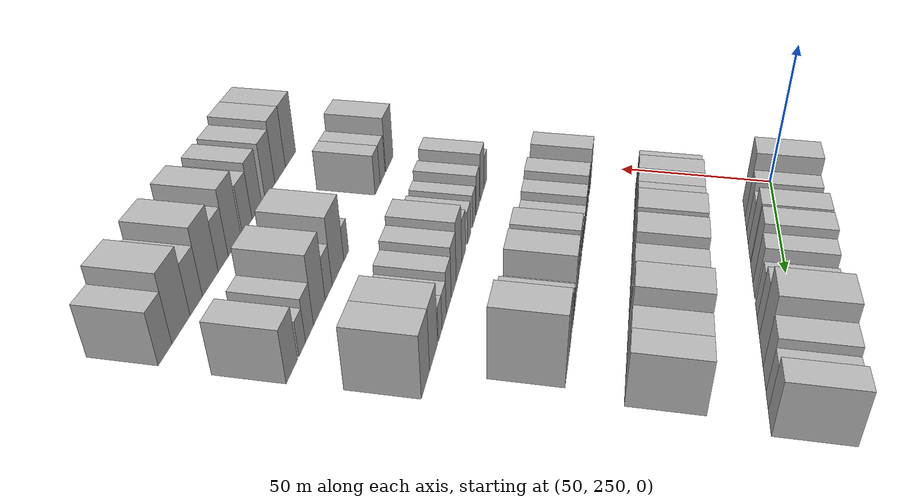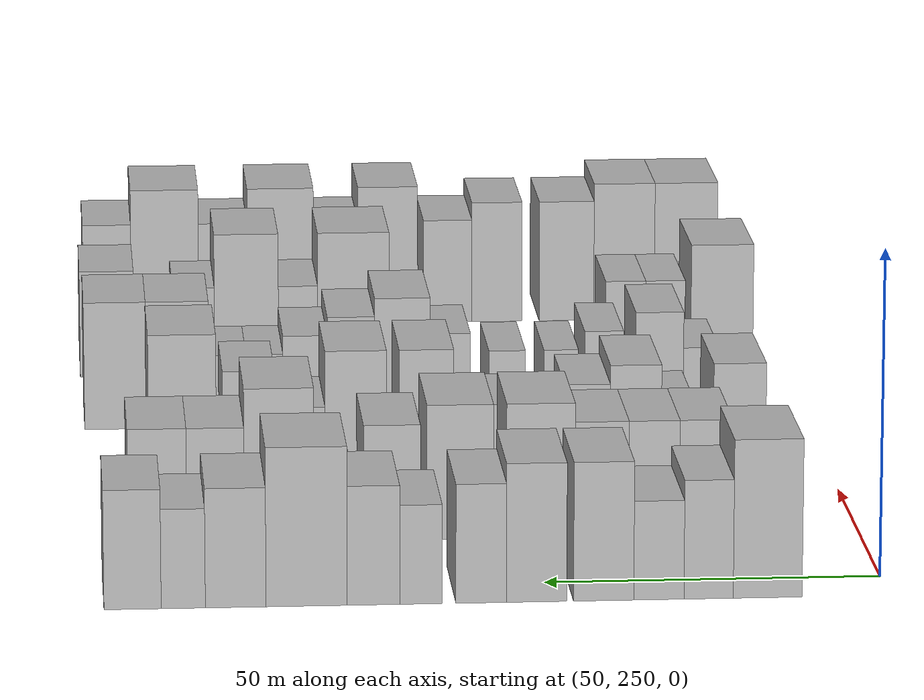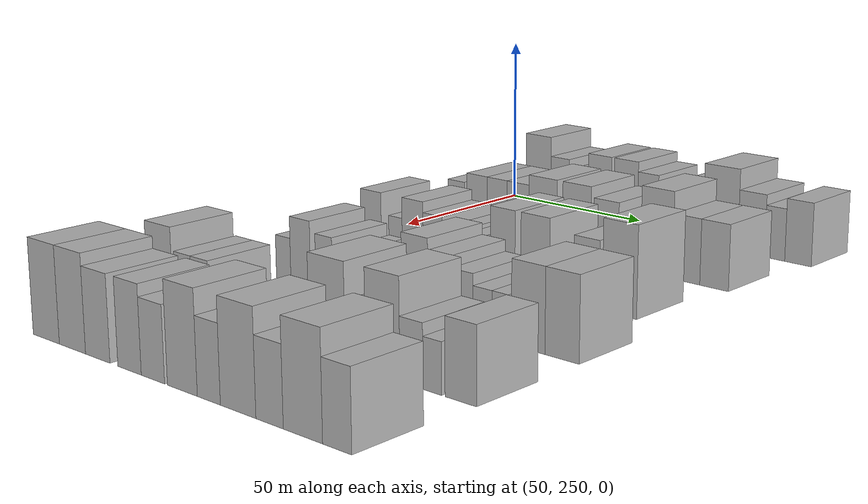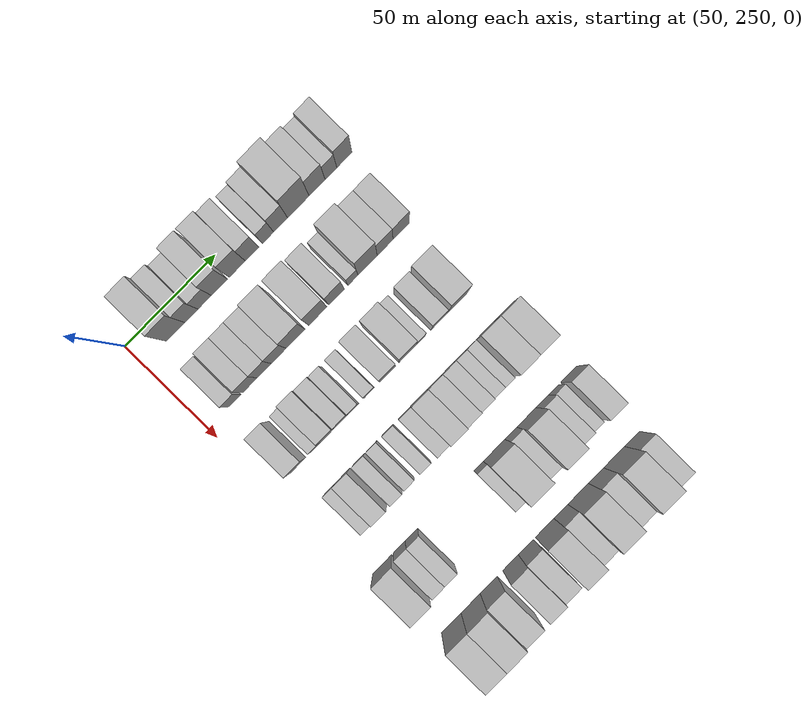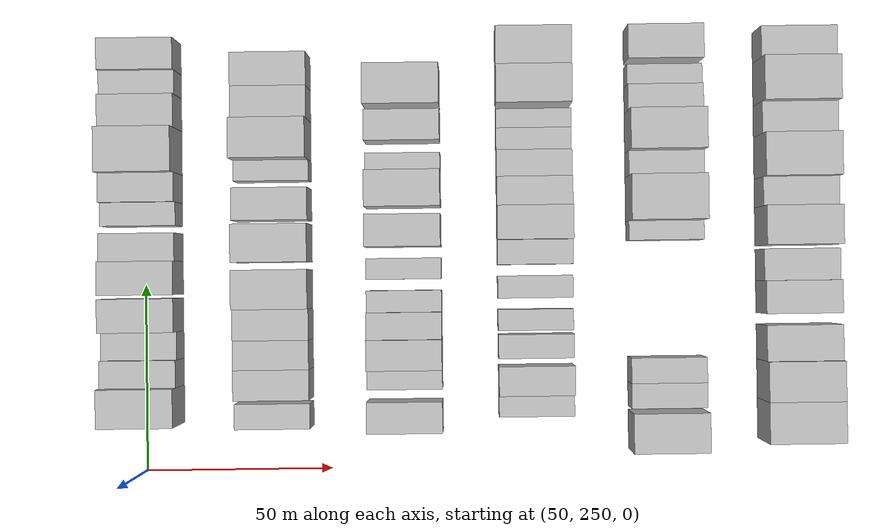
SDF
<sdf version="1.6">
 <world name="default">
  <model name="building_91">
   <static>1</static>
   <pose>50.0000 267.9501 0 0.000000 0.000000 0.000000</pose>
   <link name="link">
    <pose>0 0 12.00 0 0 0</pose>
    <collision name="collision"><geometry><box><size>20.0000 10.1535 24.0000</size></box></geometry></collision>
    <visual name="visual">
     <cast_shadows>0</cast_shadows>
     <geometry><box><size>20.0000 10.1535 24.0000</size></box></geometry>
     <material>
      <script>
       <uri>model://HANNAS_wall/materials/scripts</uri>
       <uri>model://HANNAS_wall/materials/textures</uri>
       <name>vrc/HANNAS_wall</name>
      </script>
     </material>
    </visual>
   </link>
  </model>
  <model name="building_92">
   <static>1</static>
   <pose>50.0000 276.6582 0 0.000000 0.000000 0.000000</pose>
   <link name="link">
    <pose>0 0 9.00 0 0 0</pose>
    <collision name="collision"><geometry><box><size>20.0000 7.2628 18.0000</size></box></geometry></collision>
    <visual name="visual">
     <cast_shadows>0</cast_shadows>
     <geometry><box><size>20.0000 7.2628 18.0000</size></box></geometry>
     <material>
      <script>
       <uri>model://HANNAS_wall/materials/scripts</uri>
       <uri>model://HANNAS_wall/materials/textures</uri>
       <name>vrc/HANNAS_wall</name>
      </script>
     </material>
    </visual>
   </link>
  </model>
  <model name="building_93">
   <static>1</static>
   <pose>50.0000 283.9842 0 0.000000 0.000000 0.000000</pose>
   <link name="link">
    <pose>0 0 7.50 0 0 0</pose>
    <collision name="collision"><geometry><box><size>20.0000 7.3891 15.0000</size></box></geometry></collision>
    <visual name="visual">
     <cast_shadows>0</cast_shadows>
     <geometry><box><size>20.0000 7.3891 15.0000</size></box></geometry>
     <material>
      <script>
       <uri>model://HANNAS_wall/materials/scripts</uri>
       <uri>model://HANNAS_wall/materials/textures</uri>
       <name>vrc/HANNAS_wall</name>
      </script>
     </material>
    </visual>
   </link>
  </model>
  <model name="building_94">
   <static>1</static>
   <pose>50.0000 292.1056 0 0.000000 0.000000 0.000000</pose>
   <link name="link">
    <pose>0 0 10.50 0 0 0</pose>
    <collision name="collision"><geometry><box><size>20.0000 8.8536 21.0000</size></box></geometry></collision>
    <visual name="visual">
     <cast_shadows>0</cast_shadows>
     <geometry><box><size>20.0000 8.8536 21.0000</size></box></geometry>
     <material>
      <script>
       <uri>model://HANNAS_wall/materials/scripts</uri>
       <uri>model://HANNAS_wall/materials/textures</uri>
       <name>vrc/HANNAS_wall</name>
      </script>
     </material>
    </visual>
   </link>
  </model>
  <model name="building_95">
   <static>1</static>
   <pose>50.0000 301.9605 0 0.000000 0.000000 0.000000</pose>
   <link name="link">
    <pose>0 0 10.50 0 0 0</pose>
    <collision name="collision"><geometry><box><size>20.0000 8.8564 21.0000</size></box></geometry></collision>
    <visual name="visual">
     <cast_shadows>0</cast_shadows>
     <geometry><box><size>20.0000 8.8564 21.0000</size></box></geometry>
     <material>
      <script>
       <uri>model://HANNAS_wall/materials/scripts</uri>
       <uri>model://HANNAS_wall/materials/textures</uri>
       <name>vrc/HANNAS_wall</name>
      </script>
     </material>
    </visual>
   </link>
  </model>
  <model name="building_96">
   <static>1</static>
   <pose>50.0000 310.0961 0 0.000000 0.000000 0.000000</pose>
   <link name="link">
    <pose>0 0 9.00 0 0 0</pose>
    <collision name="collision"><geometry><box><size>20.0000 7.4148 18.0000</size></box></geometry></collision>
    <visual name="visual">
     <cast_shadows>0</cast_shadows>
     <geometry><box><size>20.0000 7.4148 18.0000</size></box></geometry>
     <material>
      <script>
       <uri>model://HANNAS_wall/materials/scripts</uri>
       <uri>model://HANNAS_wall/materials/textures</uri>
       <name>vrc/HANNAS_wall</name>
      </script>
     </material>
    </visual>
   </link>
  </model>
  <model name="building_97">
   <static>1</static>
   <pose>50.0000 318.9092 0 0.000000 0.000000 0.000000</pose>
   <link name="link">
    <pose>0 0 7.50 0 0 0</pose>
    <collision name="collision"><geometry><box><size>20.0000 6.2114 15.0000</size></box></geometry></collision>
    <visual name="visual">
     <cast_shadows>0</cast_shadows>
     <geometry><box><size>20.0000 6.2114 15.0000</size></box></geometry>
     <material>
      <script>
       <uri>model://HANNAS_wall/materials/scripts</uri>
       <uri>model://HANNAS_wall/materials/textures</uri>
       <name>vrc/HANNAS_wall</name>
      </script>
     </material>
    </visual>
   </link>
  </model>
  <model name="building_98">
   <static>1</static>
   <pose>50.0000 325.8660 0 0.000000 0.000000 0.000000</pose>
   <link name="link">
    <pose>0 0 9.00 0 0 0</pose>
    <collision name="collision"><geometry><box><size>20.0000 7.7023 18.0000</size></box></geometry></collision>
    <visual name="visual">
     <cast_shadows>0</cast_shadows>
     <geometry><box><size>20.0000 7.7023 18.0000</size></box></geometry>
     <material>
      <script>
       <uri>model://HANNAS_wall/materials/scripts</uri>
       <uri>model://HANNAS_wall/materials/textures</uri>
       <name>vrc/HANNAS_wall</name>
      </script>
     </material>
    </visual>
   </link>
  </model>
  <model name="building_99">
   <static>1</static>
   <pose>50.0000 335.6517 0 0.000000 0.000000 0.000000</pose>
   <link name="link">
    <pose>0 0 12.00 0 0 0</pose>
    <collision name="collision"><geometry><box><size>20.0000 11.8690 24.0000</size></box></geometry></collision>
    <visual name="visual">
     <cast_shadows>0</cast_shadows>
     <geometry><box><size>20.0000 11.8690 24.0000</size></box></geometry>
     <material>
      <script>
       <uri>model://HANNAS_wall/materials/scripts</uri>
       <uri>model://HANNAS_wall/materials/textures</uri>
       <name>vrc/HANNAS_wall</name>
      </script>
     </material>
    </visual>
   </link>
  </model>
  <model name="building_100">
   <static>1</static>
   <pose>50.0000 346.0179 0 0.000000 0.000000 0.000000</pose>
   <link name="link">
    <pose>0 0 9.00 0 0 0</pose>
    <collision name="collision"><geometry><box><size>20.0000 8.8634 18.0000</size></box></geometry></collision>
    <visual name="visual">
     <cast_shadows>0</cast_shadows>
     <geometry><box><size>20.0000 8.8634 18.0000</size></box></geometry>
     <material>
      <script>
       <uri>model://HANNAS_wall/materials/scripts</uri>
       <uri>model://HANNAS_wall/materials/textures</uri>
       <name>vrc/HANNAS_wall</name>
      </script>
     </material>
    </visual>
   </link>
  </model>
  <model name="building_101">
   <static>1</static>
   <pose>50.0000 353.6710 0 0.000000 0.000000 0.000000</pose>
   <link name="link">
    <pose>0 0 7.50 0 0 0</pose>
    <collision name="collision"><geometry><box><size>20.0000 6.4428 15.0000</size></box></geometry></collision>
    <visual name="visual">
     <cast_shadows>0</cast_shadows>
     <geometry><box><size>20.0000 6.4428 15.0000</size></box></geometry>
     <material>
      <script>
       <uri>model://HANNAS_wall/materials/scripts</uri>
       <uri>model://HANNAS_wall/materials/textures</uri>
       <name>vrc/HANNAS_wall</name>
      </script>
     </material>
    </visual>
   </link>
  </model>
  <model name="building_102">
   <static>1</static>
   <pose>50.0000 361.0590 0 0.000000 0.000000 0.000000</pose>
   <link name="link">
    <pose>0 0 9.00 0 0 0</pose>
    <collision name="collision"><geometry><box><size>20.0000 8.3332 18.0000</size></box></geometry></collision>
    <visual name="visual">
     <cast_shadows>0</cast_shadows>
     <geometry><box><size>20.0000 8.3332 18.0000</size></box></geometry>
     <material>
      <script>
       <uri>model://HANNAS_wall/materials/scripts</uri>
       <uri>model://HANNAS_wall/materials/textures</uri>
       <name>vrc/HANNAS_wall</name>
      </script>
     </material>
    </visual>
   </link>
  </model>
  <model name="building_213">
   <static>1</static>
   <pose>85.0000 265.0071 0 0.000000 0.000000 0.000000</pose>
   <link name="link">
    <pose>0 0 7.50 0 0 0</pose>
    <collision name="collision"><geometry><box><size>20.0000 6.6869 15.0000</size></box></geometry></collision>
    <visual name="visual">
     <cast_shadows>0</cast_shadows>
     <geometry><box><size>20.0000 6.6869 15.0000</size></box></geometry>
     <material>
      <script>
       <uri>model://HANNAS_wall/materials/scripts</uri>
       <uri>model://HANNAS_wall/materials/textures</uri>
       <name>vrc/HANNAS_wall</name>
      </script>
     </material>
    </visual>
   </link>
  </model>
  <model name="building_214">
   <static>1</static>
   <pose>85.0000 273.3747 0 0.000000 0.000000 0.000000</pose>
   <link name="link">
    <pose>0 0 9.00 0 0 0</pose>
    <collision name="collision"><geometry><box><size>20.0000 8.0482 18.0000</size></box></geometry></collision>
    <visual name="visual">
     <cast_shadows>0</cast_shadows>
     <geometry><box><size>20.0000 8.0482 18.0000</size></box></geometry>
     <material>
      <script>
       <uri>model://HANNAS_wall/materials/scripts</uri>
       <uri>model://HANNAS_wall/materials/textures</uri>
       <name>vrc/HANNAS_wall</name>
      </script>
     </material>
    </visual>
   </link>
  </model>
  <model name="building_215">
   <static>1</static>
   <pose>85.0000 281.2694 0 0.000000 0.000000 0.000000</pose>
   <link name="link">
    <pose>0 0 9.00 0 0 0</pose>
    <collision name="collision"><geometry><box><size>20.0000 7.7413 18.0000</size></box></geometry></collision>
    <visual name="visual">
     <cast_shadows>0</cast_shadows>
     <geometry><box><size>20.0000 7.7413 18.0000</size></box></geometry>
     <material>
      <script>
       <uri>model://HANNAS_wall/materials/scripts</uri>
       <uri>model://HANNAS_wall/materials/textures</uri>
       <name>vrc/HANNAS_wall</name>
      </script>
     </material>
    </visual>
   </link>
  </model>
  <model name="building_216">
   <static>1</static>
   <pose>85.0000 289.2467 0 0.000000 0.000000 0.000000</pose>
   <link name="link">
    <pose>0 0 9.00 0 0 0</pose>
    <collision name="collision"><geometry><box><size>20.0000 8.2133 18.0000</size></box></geometry></collision>
    <visual name="visual">
     <cast_shadows>0</cast_shadows>
     <geometry><box><size>20.0000 8.2133 18.0000</size></box></geometry>
     <material>
      <script>
       <uri>model://HANNAS_wall/materials/scripts</uri>
       <uri>model://HANNAS_wall/materials/textures</uri>
       <name>vrc/HANNAS_wall</name>
      </script>
     </material>
    </visual>
   </link>
  </model>
  <model name="building_217">
   <static>1</static>
   <pose>85.0000 298.5450 0 0.000000 0.000000 0.000000</pose>
   <link name="link">
    <pose>0 0 10.50 0 0 0</pose>
    <collision name="collision"><geometry><box><size>20.0000 10.3832 21.0000</size></box></geometry></collision>
    <visual name="visual">
     <cast_shadows>0</cast_shadows>
     <geometry><box><size>20.0000 10.3832 21.0000</size></box></geometry>
     <material>
      <script>
       <uri>model://HANNAS_wall/materials/scripts</uri>
       <uri>model://HANNAS_wall/materials/textures</uri>
       <name>vrc/HANNAS_wall</name>
      </script>
     </material>
    </visual>
   </link>
  </model>
  <model name="building_218">
   <static>1</static>
   <pose>85.0000 310.7754 0 0.000000 0.000000 0.000000</pose>
   <link name="link">
    <pose>0 0 10.50 0 0 0</pose>
    <collision name="collision"><geometry><box><size>20.0000 10.0776 21.0000</size></box></geometry></collision>
    <visual name="visual">
     <cast_shadows>0</cast_shadows>
     <geometry><box><size>20.0000 10.0776 21.0000</size></box></geometry>
     <material>
      <script>
       <uri>model://HANNAS_wall/materials/scripts</uri>
       <uri>model://HANNAS_wall/materials/textures</uri>
       <name>vrc/HANNAS_wall</name>
      </script>
     </material>
    </visual>
   </link>
  </model>
  <model name="building_219">
   <static>1</static>
   <pose>85.0000 321.1157 0 0.000000 0.000000 0.000000</pose>
   <link name="link">
    <pose>0 0 9.00 0 0 0</pose>
    <collision name="collision"><geometry><box><size>20.0000 8.6030 18.0000</size></box></geometry></collision>
    <visual name="visual">
     <cast_shadows>0</cast_shadows>
     <geometry><box><size>20.0000 8.6030 18.0000</size></box></geometry>
     <material>
      <script>
       <uri>model://HANNAS_wall/materials/scripts</uri>
       <uri>model://HANNAS_wall/materials/textures</uri>
       <name>vrc/HANNAS_wall</name>
      </script>
     </material>
    </visual>
   </link>
  </model>
  <model name="building_220">
   <static>1</static>
   <pose>85.0000 330.1701 0 0.000000 0.000000 0.000000</pose>
   <link name="link">
    <pose>0 0 6.00 0 0 0</pose>
    <collision name="collision"><geometry><box><size>20.0000 5.5057 12.0000</size></box></geometry></collision>
    <visual name="visual">
     <cast_shadows>0</cast_shadows>
     <geometry><box><size>20.0000 5.5057 12.0000</size></box></geometry>
     <material>
      <script>
       <uri>model://HANNAS_wall/materials/scripts</uri>
       <uri>model://HANNAS_wall/materials/textures</uri>
       <name>vrc/HANNAS_wall</name>
      </script>
     </material>
    </visual>
   </link>
  </model>
  <model name="building_221">
   <static>1</static>
   <pose>85.0000 338.2046 0 0.000000 0.000000 0.000000</pose>
   <link name="link">
    <pose>0 0 12.00 0 0 0</pose>
    <collision name="collision"><geometry><box><size>20.0000 10.5634 24.0000</size></box></geometry></collision>
    <visual name="visual">
     <cast_shadows>0</cast_shadows>
     <geometry><box><size>20.0000 10.5634 24.0000</size></box></geometry>
     <material>
      <script>
       <uri>model://HANNAS_wall/materials/scripts</uri>
       <uri>model://HANNAS_wall/materials/textures</uri>
       <name>vrc/HANNAS_wall</name>
      </script>
     </material>
    </visual>
   </link>
  </model>
  <model name="building_222">
   <static>1</static>
   <pose>85.0000 347.8347 0 0.000000 0.000000 0.000000</pose>
   <link name="link">
    <pose>0 0 9.00 0 0 0</pose>
    <collision name="collision"><geometry><box><size>20.0000 8.6967 18.0000</size></box></geometry></collision>
    <visual name="visual">
     <cast_shadows>0</cast_shadows>
     <geometry><box><size>20.0000 8.6967 18.0000</size></box></geometry>
     <material>
      <script>
       <uri>model://HANNAS_wall/materials/scripts</uri>
       <uri>model://HANNAS_wall/materials/textures</uri>
       <name>vrc/HANNAS_wall</name>
      </script>
     </material>
    </visual>
   </link>
  </model>
  <model name="building_223">
   <static>1</static>
   <pose>85.0000 356.6292 0 0.000000 0.000000 0.000000</pose>
   <link name="link">
    <pose>0 0 9.00 0 0 0</pose>
    <collision name="collision"><geometry><box><size>20.0000 8.8923 18.0000</size></box></geometry></collision>
    <visual name="visual">
     <cast_shadows>0</cast_shadows>
     <geometry><box><size>20.0000 8.8923 18.0000</size></box></geometry>
     <material>
      <script>
       <uri>model://HANNAS_wall/materials/scripts</uri>
       <uri>model://HANNAS_wall/materials/textures</uri>
       <name>vrc/HANNAS_wall</name>
      </script>
     </material>
    </visual>
   </link>
  </model>
  <model name="building_341">
   <static>1</static>
   <pose>120.0000 264.4002 0 0.000000 0.000000 0.000000</pose>
   <link name="link">
    <pose>0 0 9.00 0 0 0</pose>
    <collision name="collision"><geometry><box><size>20.0000 8.2802 18.0000</size></box></geometry></collision>
    <visual name="visual">
     <cast_shadows>0</cast_shadows>
     <geometry><box><size>20.0000 8.2802 18.0000</size></box></geometry>
     <material>
      <script>
       <uri>model://HANNAS_wall/materials/scripts</uri>
       <uri>model://HANNAS_wall/materials/textures</uri>
       <name>vrc/HANNAS_wall</name>
      </script>
     </material>
    </visual>
   </link>
  </model>
  <model name="building_342">
   <static>1</static>
   <pose>120.0000 274.1498 0 0.000000 0.000000 0.000000</pose>
   <link name="link">
    <pose>0 0 6.00 0 0 0</pose>
    <collision name="collision"><geometry><box><size>20.0000 5.2189 12.0000</size></box></geometry></collision>
    <visual name="visual">
     <cast_shadows>0</cast_shadows>
     <geometry><box><size>20.0000 5.2189 12.0000</size></box></geometry>
     <material>
      <script>
       <uri>model://HANNAS_wall/materials/scripts</uri>
       <uri>model://HANNAS_wall/materials/textures</uri>
       <name>vrc/HANNAS_wall</name>
      </script>
     </material>
    </visual>
   </link>
  </model>
  <model name="building_343">
   <static>1</static>
   <pose>120.0000 280.7893 0 0.000000 0.000000 0.000000</pose>
   <link name="link">
    <pose>0 0 9.00 0 0 0</pose>
    <collision name="collision"><geometry><box><size>20.0000 8.0600 18.0000</size></box></geometry></collision>
    <visual name="visual">
     <cast_shadows>0</cast_shadows>
     <geometry><box><size>20.0000 8.0600 18.0000</size></box></geometry>
     <material>
      <script>
       <uri>model://HANNAS_wall/materials/scripts</uri>
       <uri>model://HANNAS_wall/materials/textures</uri>
       <name>vrc/HANNAS_wall</name>
      </script>
     </material>
    </visual>
   </link>
  </model>
  <model name="building_344">
   <static>1</static>
   <pose>120.0000 288.4284 0 0.000000 0.000000 0.000000</pose>
   <link name="link">
    <pose>0 0 7.50 0 0 0</pose>
    <collision name="collision"><geometry><box><size>20.0000 7.2183 15.0000</size></box></geometry></collision>
    <visual name="visual">
     <cast_shadows>0</cast_shadows>
     <geometry><box><size>20.0000 7.2183 15.0000</size></box></geometry>
     <material>
      <script>
       <uri>model://HANNAS_wall/materials/scripts</uri>
       <uri>model://HANNAS_wall/materials/textures</uri>
       <name>vrc/HANNAS_wall</name>
      </script>
     </material>
    </visual>
   </link>
  </model>
  <model name="building_345">
   <static>1</static>
   <pose>120.0000 294.9338 0 0.000000 0.000000 0.000000</pose>
   <link name="link">
    <pose>0 0 6.00 0 0 0</pose>
    <collision name="collision"><geometry><box><size>20.0000 5.7926 12.0000</size></box></geometry></collision>
    <visual name="visual">
     <cast_shadows>0</cast_shadows>
     <geometry><box><size>20.0000 5.7926 12.0000</size></box></geometry>
     <material>
      <script>
       <uri>model://HANNAS_wall/materials/scripts</uri>
       <uri>model://HANNAS_wall/materials/textures</uri>
       <name>vrc/HANNAS_wall</name>
      </script>
     </material>
    </visual>
   </link>
  </model>
  <model name="building_346">
   <static>1</static>
   <pose>120.0000 303.6219 0 0.000000 0.000000 0.000000</pose>
   <link name="link">
    <pose>0 0 6.00 0 0 0</pose>
    <collision name="collision"><geometry><box><size>20.0000 5.5836 12.0000</size></box></geometry></collision>
    <visual name="visual">
     <cast_shadows>0</cast_shadows>
     <geometry><box><size>20.0000 5.5836 12.0000</size></box></geometry>
     <material>
      <script>
       <uri>model://HANNAS_wall/materials/scripts</uri>
       <uri>model://HANNAS_wall/materials/textures</uri>
       <name>vrc/HANNAS_wall</name>
      </script>
     </material>
    </visual>
   </link>
  </model>
  <model name="building_347">
   <static>1</static>
   <pose>120.0000 313.6865 0 0.000000 0.000000 0.000000</pose>
   <link name="link">
    <pose>0 0 10.50 0 0 0</pose>
    <collision name="collision"><geometry><box><size>20.0000 8.5456 21.0000</size></box></geometry></collision>
    <visual name="visual">
     <cast_shadows>0</cast_shadows>
     <geometry><box><size>20.0000 8.5456 21.0000</size></box></geometry>
     <material>
      <script>
       <uri>model://HANNAS_wall/materials/scripts</uri>
       <uri>model://HANNAS_wall/materials/textures</uri>
       <name>vrc/HANNAS_wall</name>
      </script>
     </material>
    </visual>
   </link>
  </model>
  <model name="building_348">
   <static>1</static>
   <pose>120.0000 324.7716 0 0.000000 0.000000 0.000000</pose>
   <link name="link">
    <pose>0 0 10.50 0 0 0</pose>
    <collision name="collision"><geometry><box><size>20.0000 9.6245 21.0000</size></box></geometry></collision>
    <visual name="visual">
     <cast_shadows>0</cast_shadows>
     <geometry><box><size>20.0000 9.6245 21.0000</size></box></geometry>
     <material>
      <script>
       <uri>model://HANNAS_wall/materials/scripts</uri>
       <uri>model://HANNAS_wall/materials/textures</uri>
       <name>vrc/HANNAS_wall</name>
      </script>
     </material>
    </visual>
   </link>
  </model>
  <model name="building_349">
   <static>1</static>
   <pose>120.0000 332.0092 0 0.000000 0.000000 0.000000</pose>
   <link name="link">
    <pose>0 0 6.00 0 0 0</pose>
    <collision name="collision"><geometry><box><size>20.0000 4.8507 12.0000</size></box></geometry></collision>
    <visual name="visual">
     <cast_shadows>0</cast_shadows>
     <geometry><box><size>20.0000 4.8507 12.0000</size></box></geometry>
     <material>
      <script>
       <uri>model://HANNAS_wall/materials/scripts</uri>
       <uri>model://HANNAS_wall/materials/textures</uri>
       <name>vrc/HANNAS_wall</name>
      </script>
     </material>
    </visual>
   </link>
  </model>
  <model name="building_350">
   <static>1</static>
   <pose>120.0000 341.5160 0 0.000000 0.000000 0.000000</pose>
   <link name="link">
    <pose>0 0 9.00 0 0 0</pose>
    <collision name="collision"><geometry><box><size>20.0000 8.1628 18.0000</size></box></geometry></collision>
    <visual name="visual">
     <cast_shadows>0</cast_shadows>
     <geometry><box><size>20.0000 8.1628 18.0000</size></box></geometry>
     <material>
      <script>
       <uri>model://HANNAS_wall/materials/scripts</uri>
       <uri>model://HANNAS_wall/materials/textures</uri>
       <name>vrc/HANNAS_wall</name>
      </script>
     </material>
    </visual>
   </link>
  </model>
  <model name="building_351">
   <static>1</static>
   <pose>120.0000 351.8863 0 0.000000 0.000000 0.000000</pose>
   <link name="link">
    <pose>0 0 12.00 0 0 0</pose>
    <collision name="collision"><geometry><box><size>20.0000 10.5779 24.0000</size></box></geometry></collision>
    <visual name="visual">
     <cast_shadows>0</cast_shadows>
     <geometry><box><size>20.0000 10.5779 24.0000</size></box></geometry>
     <material>
      <script>
       <uri>model://HANNAS_wall/materials/scripts</uri>
       <uri>model://HANNAS_wall/materials/textures</uri>
       <name>vrc/HANNAS_wall</name>
      </script>
     </material>
    </visual>
   </link>
  </model>
  <model name="building_461">
   <static>1</static>
   <pose>155.0000 266.8245 0 0.000000 0.000000 0.000000</pose>
   <link name="link">
    <pose>0 0 6.00 0 0 0</pose>
    <collision name="collision"><geometry><box><size>20.0000 5.7848 12.0000</size></box></geometry></collision>
    <visual name="visual">
     <cast_shadows>0</cast_shadows>
     <geometry><box><size>20.0000 5.7848 12.0000</size></box></geometry>
     <material>
      <script>
       <uri>model://HANNAS_wall/materials/scripts</uri>
       <uri>model://HANNAS_wall/materials/textures</uri>
       <name>vrc/HANNAS_wall</name>
      </script>
     </material>
    </visual>
   </link>
  </model>
  <model name="building_462">
   <static>1</static>
   <pose>155.0000 273.6049 0 0.000000 0.000000 0.000000</pose>
   <link name="link">
    <pose>0 0 9.00 0 0 0</pose>
    <collision name="collision"><geometry><box><size>20.0000 7.7759 18.0000</size></box></geometry></collision>
    <visual name="visual">
     <cast_shadows>0</cast_shadows>
     <geometry><box><size>20.0000 7.7759 18.0000</size></box></geometry>
     <material>
      <script>
       <uri>model://HANNAS_wall/materials/scripts</uri>
       <uri>model://HANNAS_wall/materials/textures</uri>
       <name>vrc/HANNAS_wall</name>
      </script>
     </material>
    </visual>
   </link>
  </model>
  <model name="building_463">
   <static>1</static>
   <pose>155.0000 282.6535 0 0.000000 0.000000 0.000000</pose>
   <link name="link">
    <pose>0 0 7.50 0 0 0</pose>
    <collision name="collision"><geometry><box><size>20.0000 6.3214 15.0000</size></box></geometry></collision>
    <visual name="visual">
     <cast_shadows>0</cast_shadows>
     <geometry><box><size>20.0000 6.3214 15.0000</size></box></geometry>
     <material>
      <script>
       <uri>model://HANNAS_wall/materials/scripts</uri>
       <uri>model://HANNAS_wall/materials/textures</uri>
       <name>vrc/HANNAS_wall</name>
      </script>
     </material>
    </visual>
   </link>
  </model>
  <model name="building_464">
   <static>1</static>
   <pose>155.0000 289.6211 0 0.000000 0.000000 0.000000</pose>
   <link name="link">
    <pose>0 0 6.00 0 0 0</pose>
    <collision name="collision"><geometry><box><size>20.0000 5.6137 12.0000</size></box></geometry></collision>
    <visual name="visual">
     <cast_shadows>0</cast_shadows>
     <geometry><box><size>20.0000 5.6137 12.0000</size></box></geometry>
     <material>
      <script>
       <uri>model://HANNAS_wall/materials/scripts</uri>
       <uri>model://HANNAS_wall/materials/textures</uri>
       <name>vrc/HANNAS_wall</name>
      </script>
     </material>
    </visual>
   </link>
  </model>
  <model name="building_465">
   <static>1</static>
   <pose>155.0000 298.3934 0 0.000000 0.000000 0.000000</pose>
   <link name="link">
    <pose>0 0 6.00 0 0 0</pose>
    <collision name="collision"><geometry><box><size>20.0000 5.9309 12.0000</size></box></geometry></collision>
    <visual name="visual">
     <cast_shadows>0</cast_shadows>
     <geometry><box><size>20.0000 5.9309 12.0000</size></box></geometry>
     <material>
      <script>
       <uri>model://HANNAS_wall/materials/scripts</uri>
       <uri>model://HANNAS_wall/materials/textures</uri>
       <name>vrc/HANNAS_wall</name>
      </script>
     </material>
    </visual>
   </link>
  </model>
  <model name="building_466">
   <static>1</static>
   <pose>155.0000 307.6278 0 0.000000 0.000000 0.000000</pose>
   <link name="link">
    <pose>0 0 7.50 0 0 0</pose>
    <collision name="collision"><geometry><box><size>20.0000 6.5379 15.0000</size></box></geometry></collision>
    <visual name="visual">
     <cast_shadows>0</cast_shadows>
     <geometry><box><size>20.0000 6.5379 15.0000</size></box></geometry>
     <material>
      <script>
       <uri>model://HANNAS_wall/materials/scripts</uri>
       <uri>model://HANNAS_wall/materials/textures</uri>
       <name>vrc/HANNAS_wall</name>
      </script>
     </material>
    </visual>
   </link>
  </model>
  <model name="building_467">
   <static>1</static>
   <pose>155.0000 315.3817 0 0.000000 0.000000 0.000000</pose>
   <link name="link">
    <pose>0 0 10.50 0 0 0</pose>
    <collision name="collision"><geometry><box><size>20.0000 8.9701 21.0000</size></box></geometry></collision>
    <visual name="visual">
     <cast_shadows>0</cast_shadows>
     <geometry><box><size>20.0000 8.9701 21.0000</size></box></geometry>
     <material>
      <script>
       <uri>model://HANNAS_wall/materials/scripts</uri>
       <uri>model://HANNAS_wall/materials/textures</uri>
       <name>vrc/HANNAS_wall</name>
      </script>
     </material>
    </visual>
   </link>
  </model>
  <model name="building_468">
   <static>1</static>
   <pose>155.0000 323.6958 0 0.000000 0.000000 0.000000</pose>
   <link name="link">
    <pose>0 0 9.00 0 0 0</pose>
    <collision name="collision"><geometry><box><size>20.0000 7.6580 18.0000</size></box></geometry></collision>
    <visual name="visual">
     <cast_shadows>0</cast_shadows>
     <geometry><box><size>20.0000 7.6580 18.0000</size></box></geometry>
     <material>
      <script>
       <uri>model://HANNAS_wall/materials/scripts</uri>
       <uri>model://HANNAS_wall/materials/textures</uri>
       <name>vrc/HANNAS_wall</name>
      </script>
     </material>
    </visual>
   </link>
  </model>
  <model name="building_469">
   <static>1</static>
   <pose>155.0000 331.1213 0 0.000000 0.000000 0.000000</pose>
   <link name="link">
    <pose>0 0 7.50 0 0 0</pose>
    <collision name="collision"><geometry><box><size>20.0000 7.1929 15.0000</size></box></geometry></collision>
    <visual name="visual">
     <cast_shadows>0</cast_shadows>
     <geometry><box><size>20.0000 7.1929 15.0000</size></box></geometry>
     <material>
      <script>
       <uri>model://HANNAS_wall/materials/scripts</uri>
       <uri>model://HANNAS_wall/materials/textures</uri>
       <name>vrc/HANNAS_wall</name>
      </script>
     </material>
    </visual>
   </link>
  </model>
  <model name="building_470">
   <static>1</static>
   <pose>155.0000 337.6980 0 0.000000 0.000000 0.000000</pose>
   <link name="link">
    <pose>0 0 6.00 0 0 0</pose>
    <collision name="collision"><geometry><box><size>20.0000 5.9605 12.0000</size></box></geometry></collision>
    <visual name="visual">
     <cast_shadows>0</cast_shadows>
     <geometry><box><size>20.0000 5.9605 12.0000</size></box></geometry>
     <material>
      <script>
       <uri>model://HANNAS_wall/materials/scripts</uri>
       <uri>model://HANNAS_wall/materials/textures</uri>
       <name>vrc/HANNAS_wall</name>
      </script>
     </material>
    </visual>
   </link>
  </model>
  <model name="building_471">
   <static>1</static>
   <pose>155.0000 343.2026 0 0.000000 0.000000 0.000000</pose>
   <link name="link">
    <pose>0 0 6.00 0 0 0</pose>
    <collision name="collision"><geometry><box><size>20.0000 5.0488 12.0000</size></box></geometry></collision>
    <visual name="visual">
     <cast_shadows>0</cast_shadows>
     <geometry><box><size>20.0000 5.0488 12.0000</size></box></geometry>
     <material>
      <script>
       <uri>model://HANNAS_wall/materials/scripts</uri>
       <uri>model://HANNAS_wall/materials/textures</uri>
       <name>vrc/HANNAS_wall</name>
      </script>
     </material>
    </visual>
   </link>
  </model>
  <model name="building_472">
   <static>1</static>
   <pose>155.0000 351.7864 0 0.000000 0.000000 0.000000</pose>
   <link name="link">
    <pose>0 0 10.50 0 0 0</pose>
    <collision name="collision"><geometry><box><size>20.0000 10.1187 21.0000</size></box></geometry></collision>
    <visual name="visual">
     <cast_shadows>0</cast_shadows>
     <geometry><box><size>20.0000 10.1187 21.0000</size></box></geometry>
     <material>
      <script>
       <uri>model://HANNAS_wall/materials/scripts</uri>
       <uri>model://HANNAS_wall/materials/textures</uri>
       <name>vrc/HANNAS_wall</name>
      </script>
     </material>
    </visual>
   </link>
  </model>
  <model name="building_473">
   <static>1</static>
   <pose>155.0000 361.8297 0 0.000000 0.000000 0.000000</pose>
   <link name="link">
    <pose>0 0 10.50 0 0 0</pose>
    <collision name="collision"><geometry><box><size>20.0000 9.9681 21.0000</size></box></geometry></collision>
    <visual name="visual">
     <cast_shadows>0</cast_shadows>
     <geometry><box><size>20.0000 9.9681 21.0000</size></box></geometry>
     <material>
      <script>
       <uri>model://HANNAS_wall/materials/scripts</uri>
       <uri>model://HANNAS_wall/materials/textures</uri>
       <name>vrc/HANNAS_wall</name>
      </script>
     </material>
    </visual>
   </link>
  </model>
  <model name="building_587">
   <static>1</static>
   <pose>190.0000 259.6524 0 0.000000 0.000000 0.000000</pose>
   <link name="link">
    <pose>0 0 10.50 0 0 0</pose>
    <collision name="collision"><geometry><box><size>20.0000 10.4633 21.0000</size></box></geometry></collision>
    <visual name="visual">
     <cast_shadows>0</cast_shadows>
     <geometry><box><size>20.0000 10.4633 21.0000</size></box></geometry>
     <material>
      <script>
       <uri>model://HANNAS_wall/materials/scripts</uri>
       <uri>model://HANNAS_wall/materials/textures</uri>
       <name>vrc/HANNAS_wall</name>
      </script>
     </material>
    </visual>
   </link>
  </model>
  <model name="building_588">
   <static>1</static>
   <pose>190.0000 269.1987 0 0.000000 0.000000 0.000000</pose>
   <link name="link">
    <pose>0 0 7.50 0 0 0</pose>
    <collision name="collision"><geometry><box><size>20.0000 6.6293 15.0000</size></box></geometry></collision>
    <visual name="visual">
     <cast_shadows>0</cast_shadows>
     <geometry><box><size>20.0000 6.6293 15.0000</size></box></geometry>
     <material>
      <script>
       <uri>model://HANNAS_wall/materials/scripts</uri>
       <uri>model://HANNAS_wall/materials/textures</uri>
       <name>vrc/HANNAS_wall</name>
      </script>
     </material>
    </visual>
   </link>
  </model>
  <model name="building_589">
   <static>1</static>
   <pose>190.0000 275.8765 0 0.000000 0.000000 0.000000</pose>
   <link name="link">
    <pose>0 0 7.50 0 0 0</pose>
    <collision name="collision"><geometry><box><size>20.0000 6.7262 15.0000</size></box></geometry></collision>
    <visual name="visual">
     <cast_shadows>0</cast_shadows>
     <geometry><box><size>20.0000 6.7262 15.0000</size></box></geometry>
     <material>
      <script>
       <uri>model://HANNAS_wall/materials/scripts</uri>
       <uri>model://HANNAS_wall/materials/textures</uri>
       <name>vrc/HANNAS_wall</name>
      </script>
     </material>
    </visual>
   </link>
  </model>
  <model name="building_590">
   <static>1</static>
   <pose>190.0000 312.9645 0 0.000000 0.000000 0.000000</pose>
   <link name="link">
    <pose>0 0 6.00 0 0 0</pose>
    <collision name="collision"><geometry><box><size>20.0000 5.1500 12.0000</size></box></geometry></collision>
    <visual name="visual">
     <cast_shadows>0</cast_shadows>
     <geometry><box><size>20.0000 5.1500 12.0000</size></box></geometry>
     <material>
      <script>
       <uri>model://HANNAS_wall/materials/scripts</uri>
       <uri>model://HANNAS_wall/materials/textures</uri>
       <name>vrc/HANNAS_wall</name>
      </script>
     </material>
    </visual>
   </link>
  </model>
  <model name="building_591">
   <static>1</static>
   <pose>190.0000 321.5065 0 0.000000 0.000000 0.000000</pose>
   <link name="link">
    <pose>0 0 12.00 0 0 0</pose>
    <collision name="collision"><geometry><box><size>20.0000 11.9340 24.0000</size></box></geometry></collision>
    <visual name="visual">
     <cast_shadows>0</cast_shadows>
     <geometry><box><size>20.0000 11.9340 24.0000</size></box></geometry>
     <material>
      <script>
       <uri>model://HANNAS_wall/materials/scripts</uri>
       <uri>model://HANNAS_wall/materials/textures</uri>
       <name>vrc/HANNAS_wall</name>
      </script>
     </material>
    </visual>
   </link>
  </model>
  <model name="building_592">
   <static>1</static>
   <pose>190.0000 330.7535 0 0.000000 0.000000 0.000000</pose>
   <link name="link">
    <pose>0 0 7.50 0 0 0</pose>
    <collision name="collision"><geometry><box><size>20.0000 6.5600 15.0000</size></box></geometry></collision>
    <visual name="visual">
     <cast_shadows>0</cast_shadows>
     <geometry><box><size>20.0000 6.5600 15.0000</size></box></geometry>
     <material>
      <script>
       <uri>model://HANNAS_wall/materials/scripts</uri>
       <uri>model://HANNAS_wall/materials/textures</uri>
       <name>vrc/HANNAS_wall</name>
      </script>
     </material>
    </visual>
   </link>
  </model>
  <model name="building_593">
   <static>1</static>
   <pose>190.0000 339.3719 0 0.000000 0.000000 0.000000</pose>
   <link name="link">
    <pose>0 0 12.00 0 0 0</pose>
    <collision name="collision"><geometry><box><size>20.0000 10.6768 24.0000</size></box></geometry></collision>
    <visual name="visual">
     <cast_shadows>0</cast_shadows>
     <geometry><box><size>20.0000 10.6768 24.0000</size></box></geometry>
     <material>
      <script>
       <uri>model://HANNAS_wall/materials/scripts</uri>
       <uri>model://HANNAS_wall/materials/textures</uri>
       <name>vrc/HANNAS_wall</name>
      </script>
     </material>
    </visual>
   </link>
  </model>
  <model name="building_594">
   <static>1</static>
   <pose>190.0000 348.1816 0 0.000000 0.000000 0.000000</pose>
   <link name="link">
    <pose>0 0 7.50 0 0 0</pose>
    <collision name="collision"><geometry><box><size>20.0000 6.9425 15.0000</size></box></geometry></collision>
    <visual name="visual">
     <cast_shadows>0</cast_shadows>
     <geometry><box><size>20.0000 6.9425 15.0000</size></box></geometry>
     <material>
      <script>
       <uri>model://HANNAS_wall/materials/scripts</uri>
       <uri>model://HANNAS_wall/materials/textures</uri>
       <name>vrc/HANNAS_wall</name>
      </script>
     </material>
    </visual>
   </link>
  </model>
  <model name="building_595">
   <static>1</static>
   <pose>190.0000 354.4051 0 0.000000 0.000000 0.000000</pose>
   <link name="link">
    <pose>0 0 6.00 0 0 0</pose>
    <collision name="collision"><geometry><box><size>20.0000 5.5044 12.0000</size></box></geometry></collision>
    <visual name="visual">
     <cast_shadows>0</cast_shadows>
     <geometry><box><size>20.0000 5.5044 12.0000</size></box></geometry>
     <material>
      <script>
       <uri>model://HANNAS_wall/materials/scripts</uri>
       <uri>model://HANNAS_wall/materials/textures</uri>
       <name>vrc/HANNAS_wall</name>
      </script>
     </material>
    </visual>
   </link>
  </model>
  <model name="building_596">
   <static>1</static>
   <pose>190.0000 362.6472 0 0.000000 0.000000 0.000000</pose>
   <link name="link">
    <pose>0 0 9.00 0 0 0</pose>
    <collision name="collision"><geometry><box><size>20.0000 8.9799 18.0000</size></box></geometry></collision>
    <visual name="visual">
     <cast_shadows>0</cast_shadows>
     <geometry><box><size>20.0000 8.9799 18.0000</size></box></geometry>
     <material>
      <script>
       <uri>model://HANNAS_wall/materials/scripts</uri>
       <uri>model://HANNAS_wall/materials/textures</uri>
       <name>vrc/HANNAS_wall</name>
      </script>
     </material>
    </visual>
   </link>
  </model>
  <model name="building_712">
   <static>1</static>
   <pose>225.0000 262.1753 0 0.000000 0.000000 0.000000</pose>
   <link name="link">
    <pose>0 0 12.00 0 0 0</pose>
    <collision name="collision"><geometry><box><size>20.0000 10.8502 24.0000</size></box></geometry></collision>
    <visual name="visual">
     <cast_shadows>0</cast_shadows>
     <geometry><box><size>20.0000 10.8502 24.0000</size></box></geometry>
     <material>
      <script>
       <uri>model://HANNAS_wall/materials/scripts</uri>
       <uri>model://HANNAS_wall/materials/textures</uri>
       <name>vrc/HANNAS_wall</name>
      </script>
     </material>
    </visual>
   </link>
  </model>
  <model name="building_713">
   <static>1</static>
   <pose>225.0000 272.8585 0 0.000000 0.000000 0.000000</pose>
   <link name="link">
    <pose>0 0 12.00 0 0 0</pose>
    <collision name="collision"><geometry><box><size>20.0000 10.5160 24.0000</size></box></geometry></collision>
    <visual name="visual">
     <cast_shadows>0</cast_shadows>
     <geometry><box><size>20.0000 10.5160 24.0000</size></box></geometry>
     <material>
      <script>
       <uri>model://HANNAS_wall/materials/scripts</uri>
       <uri>model://HANNAS_wall/materials/textures</uri>
       <name>vrc/HANNAS_wall</name>
      </script>
     </material>
    </visual>
   </link>
  </model>
  <model name="building_714">
   <static>1</static>
   <pose>225.0000 282.8438 0 0.000000 0.000000 0.000000</pose>
   <link name="link">
    <pose>0 0 10.50 0 0 0</pose>
    <collision name="collision"><geometry><box><size>20.0000 9.4548 21.0000</size></box></geometry></collision>
    <visual name="visual">
     <cast_shadows>0</cast_shadows>
     <geometry><box><size>20.0000 9.4548 21.0000</size></box></geometry>
     <material>
      <script>
       <uri>model://HANNAS_wall/materials/scripts</uri>
       <uri>model://HANNAS_wall/materials/textures</uri>
       <name>vrc/HANNAS_wall</name>
      </script>
     </material>
    </visual>
   </link>
  </model>
  <model name="building_715">
   <static>1</static>
   <pose>225.0000 294.9056 0 0.000000 0.000000 0.000000</pose>
   <link name="link">
    <pose>0 0 10.50 0 0 0</pose>
    <collision name="collision"><geometry><box><size>20.0000 8.6687 21.0000</size></box></geometry></collision>
    <visual name="visual">
     <cast_shadows>0</cast_shadows>
     <geometry><box><size>20.0000 8.6687 21.0000</size></box></geometry>
     <material>
      <script>
       <uri>model://HANNAS_wall/materials/scripts</uri>
       <uri>model://HANNAS_wall/materials/textures</uri>
       <name>vrc/HANNAS_wall</name>
      </script>
     </material>
    </visual>
   </link>
  </model>
  <model name="building_716">
   <static>1</static>
   <pose>225.0000 303.4182 0 0.000000 0.000000 0.000000</pose>
   <link name="link">
    <pose>0 0 9.00 0 0 0</pose>
    <collision name="collision"><geometry><box><size>20.0000 8.3566 18.0000</size></box></geometry></collision>
    <visual name="visual">
     <cast_shadows>0</cast_shadows>
     <geometry><box><size>20.0000 8.3566 18.0000</size></box></geometry>
     <material>
      <script>
       <uri>model://HANNAS_wall/materials/scripts</uri>
       <uri>model://HANNAS_wall/materials/textures</uri>
       <name>vrc/HANNAS_wall</name>
      </script>
     </material>
    </visual>
   </link>
  </model>
  <model name="building_717">
   <static>1</static>
   <pose>225.0000 313.7451 0 0.000000 0.000000 0.000000</pose>
   <link name="link">
    <pose>0 0 12.00 0 0 0</pose>
    <collision name="collision"><geometry><box><size>20.0000 10.2973 24.0000</size></box></geometry></collision>
    <visual name="visual">
     <cast_shadows>0</cast_shadows>
     <geometry><box><size>20.0000 10.2973 24.0000</size></box></geometry>
     <material>
      <script>
       <uri>model://HANNAS_wall/materials/scripts</uri>
       <uri>model://HANNAS_wall/materials/textures</uri>
       <name>vrc/HANNAS_wall</name>
      </script>
     </material>
    </visual>
   </link>
  </model>
  <model name="building_718">
   <static>1</static>
   <pose>225.0000 322.7311 0 0.000000 0.000000 0.000000</pose>
   <link name="link">
    <pose>0 0 9.00 0 0 0</pose>
    <collision name="collision"><geometry><box><size>20.0000 7.6746 18.0000</size></box></geometry></collision>
    <visual name="visual">
     <cast_shadows>0</cast_shadows>
     <geometry><box><size>20.0000 7.6746 18.0000</size></box></geometry>
     <material>
      <script>
       <uri>model://HANNAS_wall/materials/scripts</uri>
       <uri>model://HANNAS_wall/materials/textures</uri>
       <name>vrc/HANNAS_wall</name>
      </script>
     </material>
    </visual>
   </link>
  </model>
  <model name="building_719">
   <static>1</static>
   <pose>225.0000 332.2553 0 0.000000 0.000000 0.000000</pose>
   <link name="link">
    <pose>0 0 12.00 0 0 0</pose>
    <collision name="collision"><geometry><box><size>20.0000 11.3738 24.0000</size></box></geometry></collision>
    <visual name="visual">
     <cast_shadows>0</cast_shadows>
     <geometry><box><size>20.0000 11.3738 24.0000</size></box></geometry>
     <material>
      <script>
       <uri>model://HANNAS_wall/materials/scripts</uri>
       <uri>model://HANNAS_wall/materials/textures</uri>
       <name>vrc/HANNAS_wall</name>
      </script>
     </material>
    </visual>
   </link>
  </model>
  <model name="building_720">
   <static>1</static>
   <pose>225.0000 342.1510 0 0.000000 0.000000 0.000000</pose>
   <link name="link">
    <pose>0 0 9.00 0 0 0</pose>
    <collision name="collision"><geometry><box><size>20.0000 8.4176 18.0000</size></box></geometry></collision>
    <visual name="visual">
     <cast_shadows>0</cast_shadows>
     <geometry><box><size>20.0000 8.4176 18.0000</size></box></geometry>
     <material>
      <script>
       <uri>model://HANNAS_wall/materials/scripts</uri>
       <uri>model://HANNAS_wall/materials/textures</uri>
       <name>vrc/HANNAS_wall</name>
      </script>
     </material>
    </visual>
   </link>
  </model>
  <model name="building_721">
   <static>1</static>
   <pose>225.0000 352.1586 0 0.000000 0.000000 0.000000</pose>
   <link name="link">
    <pose>0 0 12.00 0 0 0</pose>
    <collision name="collision"><geometry><box><size>20.0000 11.5976 24.0000</size></box></geometry></collision>
    <visual name="visual">
     <cast_shadows>0</cast_shadows>
     <geometry><box><size>20.0000 11.5976 24.0000</size></box></geometry>
     <material>
      <script>
       <uri>model://HANNAS_wall/materials/scripts</uri>
       <uri>model://HANNAS_wall/materials/textures</uri>
       <name>vrc/HANNAS_wall</name>
      </script>
     </material>
    </visual>
   </link>
  </model>
  <model name="building_722">
   <static>1</static>
   <pose>225.0000 362.0858 0 0.000000 0.000000 0.000000</pose>
   <link name="link">
    <pose>0 0 9.00 0 0 0</pose>
    <collision name="collision"><geometry><box><size>20.0000 8.2568 18.0000</size></box></geometry></collision>
    <visual name="visual">
     <cast_shadows>0</cast_shadows>
     <geometry><box><size>20.0000 8.2568 18.0000</size></box></geometry>
     <material>
      <script>
       <uri>model://HANNAS_wall/materials/scripts</uri>
       <uri>model://HANNAS_wall/materials/textures</uri>
       <name>vrc/HANNAS_wall</name>
      </script>
     </material>
    </visual>
   </link>
  </model>
 </world>
</sdf>
